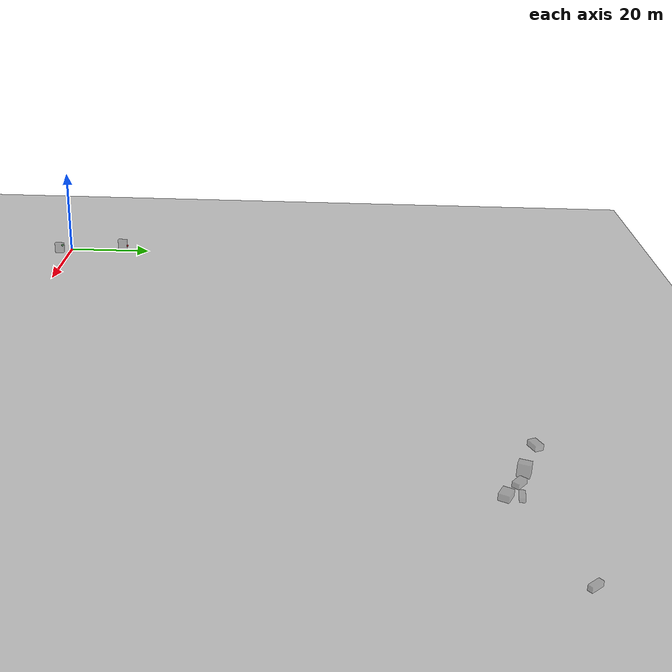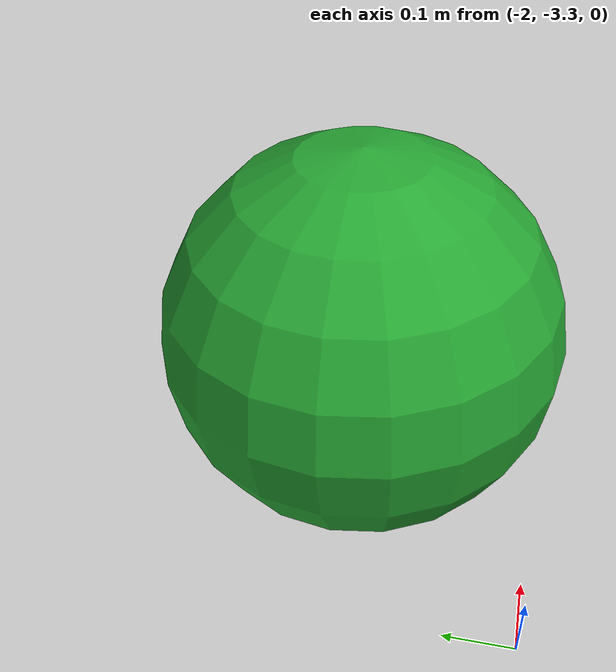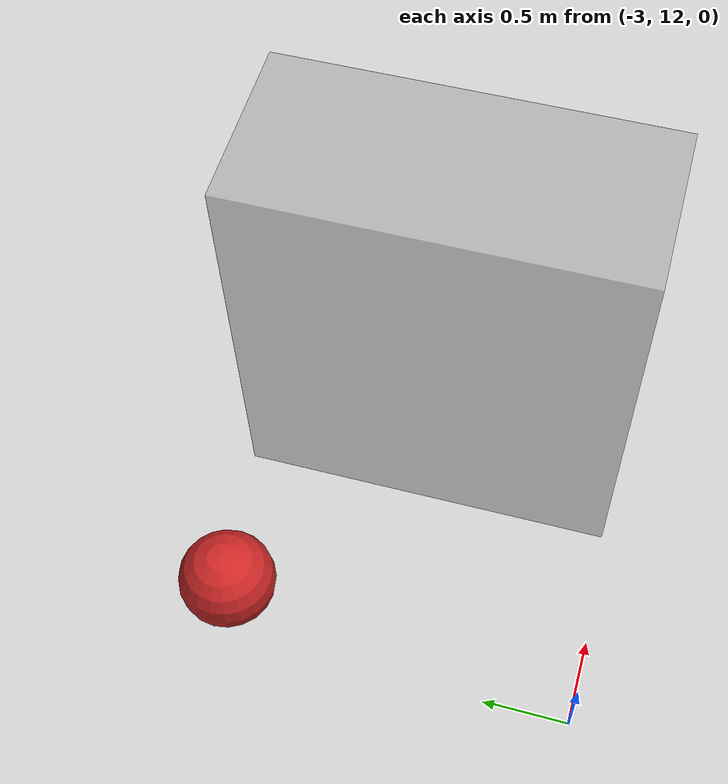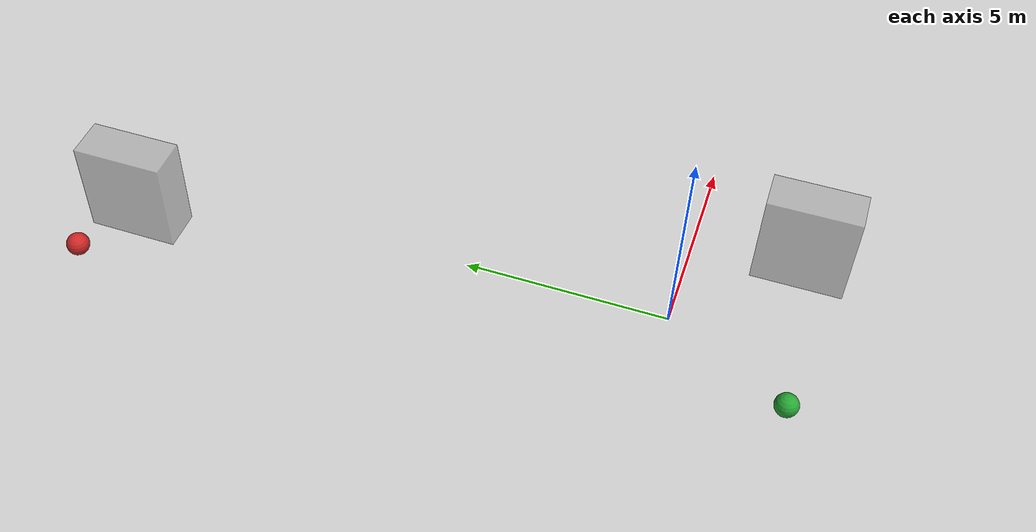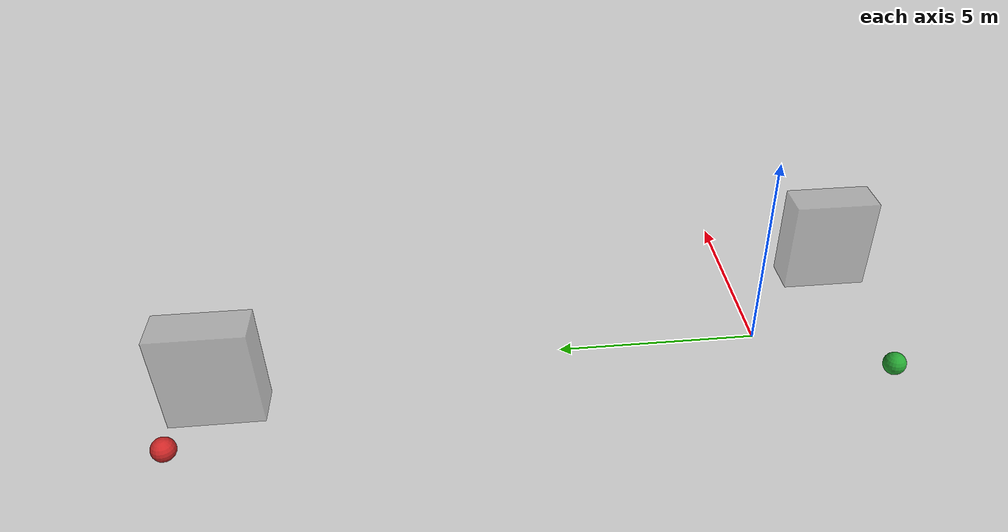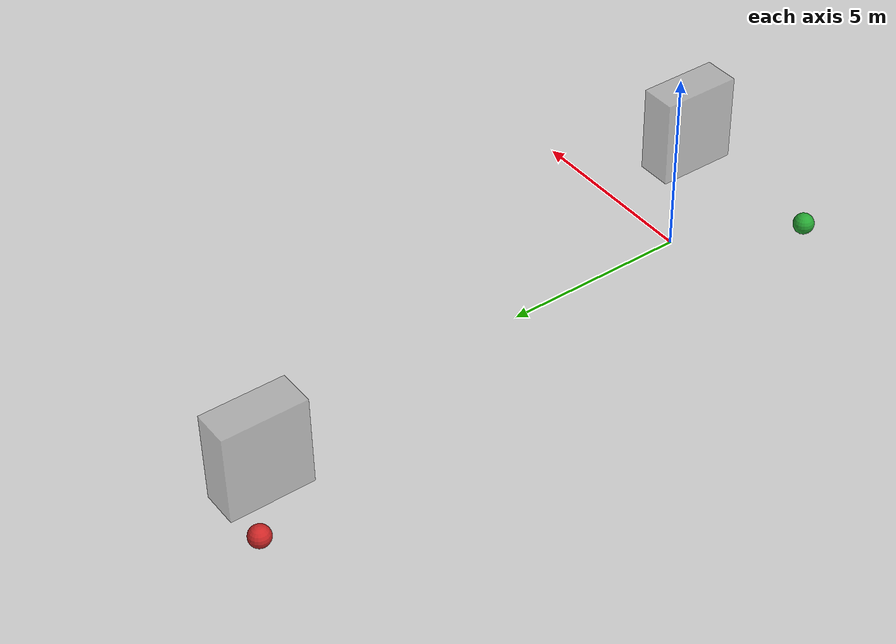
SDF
<sdf version="1.7">
 <world name="default">
  <light name="sun" type="directional">
   <pose>0 0 10 0 -0 0</pose>
   <diffuse>0.8 0.8 0.8 1</diffuse>
   <specular>0.2 0.2 0.2 1</specular>
   <attenuation>
    <range>1000</range>
    <constant>0.9</constant>
    <linear>0.01</linear>
    <quadratic>0.001</quadratic>
   </attenuation>
   <direction>-0.5 0.1 -0.9</direction>
   <spot><inner_angle>0</inner_angle><outer_angle>0</outer_angle><falloff>0</falloff></spot>
  </light>
  <model name="ground_plane">
   <static>1</static>
   <link name="link">
    <collision name="collision">
     <geometry><plane><normal>0 0 1</normal><size>100 100</size></plane></geometry>
     <surface>
      <contact><collide_bitmask>65535</collide_bitmask></contact>
      <friction><ode><mu>100</mu><mu2>50</mu2></ode></friction>
     </surface>
    </collision>
    <visual name="visual">
     <cast_shadows>0</cast_shadows>
     <geometry><plane><normal>0 0 1</normal><size>100 100</size></plane></geometry>
     <material>
      <script><uri>file://media/materials/scripts/gazebo.material</uri><name>Gazebo/Grey</name></script>
     </material>
    </visual>
   </link>
  </model>
  <gravity>0 0 -9.8</gravity>
  <magnetic_field>6e-06 2.3e-05 -4.2e-05</magnetic_field>
  <atmosphere type="adiabatic"/>
  <physics type="ode">
   <max_step_size>0.001</max_step_size>
   <real_time_factor>1</real_time_factor>
   <real_time_update_rate>1000</real_time_update_rate>
  </physics>
  <scene><ambient>0.4 0.4 0.4 1</ambient><background>0.7 0.7 0.7 1</background><shadows>1</shadows></scene>
  <spherical_coordinates>
   <surface_model>EARTH_WGS84</surface_model>
   <latitude_deg>0</latitude_deg>
   <longitude_deg>0</longitude_deg>
   <elevation>0</elevation>
   <heading_deg>0</heading_deg>
  </spherical_coordinates>
  <model name="unit_box_0">
   <link name="link">
    <inertial>
     <mass>5.52071</mass>
     <inertia><ixx>5.113</ixx><ixy>0</ixy><ixz>0</ixz><iyy>3.3079</iyy><iyz>0</iyz><izz>2.72521</izz></inertia>
    </inertial>
    <visual name="visual">
     <geometry><box><size>1 2.21892 2.48801</size></box></geometry>
     <material>
      <script><name>Gazebo/Grey</name><uri>file://media/materials/scripts/gazebo.material</uri></script>
      <shader type="pixel"><normal_map>__default__</normal_map></shader>
      <ambient>0.3 0.3 0.3 1</ambient>
      <diffuse>0.7 0.7 0.7 1</diffuse>
      <specular>0.01 0.01 0.01 1</specular>
      <emissive>0 0 0 1</emissive>
     </material>
     <transparency>0.5</transparency>
    </visual>
    <collision name="collision">
     <geometry><box><size>1 2.21892 2.48801</size></box></geometry>
     <surface>
      <friction>
       <ode><mu>1</mu><mu2>1</mu2><fdir1>0 0 0</fdir1><slip1>0</slip1><slip2>0</slip2></ode>
       <torsional>
        <coefficient>1</coefficient>
        <patch_radius>0</patch_radius>
        <surface_radius>0</surface_radius>
        <use_patch_radius>1</use_patch_radius>
        <ode><slip>0</slip></ode>
       </torsional>
      </friction>
      <bounce><restitution_coefficient>0</restitution_coefficient><threshold>1e+06</threshold></bounce>
      <contact>
       <collide_without_contact>0</collide_without_contact>
       <collide_without_contact_bitmask>1</collide_without_contact_bitmask>
       <collide_bitmask>1</collide_bitmask>
       <ode>
        <soft_cfm>0</soft_cfm>
        <soft_erp>0.2</soft_erp>
        <kp>1e+13</kp>
        <kd>1</kd>
        <max_vel>0.01</max_vel>
        <min_depth>0</min_depth>
       </ode>
       <bullet>
        <split_impulse>1</split_impulse>
        <split_impulse_penetration_threshold>-0.01</split_impulse_penetration_threshold>
        <soft_cfm>0</soft_cfm>
        <soft_erp>0.2</soft_erp>
        <kp>1e+13</kp>
        <kd>1</kd>
       </bullet>
      </contact>
     </surface>
    </collision>
   </link>
   <static>0</static>
   <pose>-1.2973 13.1503 1.24401 0 1e-06 0</pose>
  </model>
  <model name="unit_box_1">
   <link name="link">
    <inertial>
     <mass>5.52071</mass>
     <inertia><ixx>5.113</ixx><ixy>0</ixy><ixz>0</ixz><iyy>3.3079</iyy><iyz>0</iyz><izz>2.72521</izz></inertia>
    </inertial>
    <visual name="visual">
     <geometry><box><size>1.63627 1.10436 2.48801</size></box></geometry>
     <material>
      <script><name>Gazebo/Grey</name><uri>file://media/materials/scripts/gazebo.material</uri></script>
      <shader type="pixel"><normal_map>__default__</normal_map></shader>
      <ambient>0.3 0.3 0.3 1</ambient>
      <diffuse>0.7 0.7 0.7 1</diffuse>
      <specular>0.01 0.01 0.01 1</specular>
      <emissive>0 0 0 1</emissive>
     </material>
     <transparency>0.5</transparency>
    </visual>
    <collision name="collision">
     <geometry><box><size>1.63627 1.10436 2.48801</size></box></geometry>
     <surface>
      <friction>
       <ode><mu>1</mu><mu2>1</mu2><fdir1>0 0 0</fdir1><slip1>0</slip1><slip2>0</slip2></ode>
       <torsional>
        <coefficient>1</coefficient>
        <patch_radius>0</patch_radius>
        <surface_radius>0</surface_radius>
        <use_patch_radius>1</use_patch_radius>
        <ode><slip>0</slip></ode>
       </torsional>
      </friction>
      <bounce><restitution_coefficient>0</restitution_coefficient><threshold>1e+06</threshold></bounce>
      <contact>
       <collide_without_contact>0</collide_without_contact>
       <collide_without_contact_bitmask>1</collide_without_contact_bitmask>
       <collide_bitmask>1</collide_bitmask>
       <ode>
        <soft_cfm>0</soft_cfm>
        <soft_erp>0.2</soft_erp>
        <kp>1e+13</kp>
        <kd>1</kd>
        <max_vel>0.01</max_vel>
        <min_depth>0</min_depth>
       </ode>
       <bullet>
        <split_impulse>1</split_impulse>
        <split_impulse_penetration_threshold>-0.01</split_impulse_penetration_threshold>
        <soft_cfm>0</soft_cfm>
        <soft_erp>0.2</soft_erp>
        <kp>1e+13</kp>
        <kd>1</kd>
       </bullet>
      </contact>
     </surface>
    </collision>
   </link>
   <static>0</static>
   <pose>89.2709 103.628 0.55218 -1.5708 0 2.01413</pose>
  </model>
  <model name="unit_box_2">
   <link name="link">
    <inertial>
     <mass>5.52071</mass>
     <inertia><ixx>5.113</ixx><ixy>0</ixy><ixz>0</ixz><iyy>3.3079</iyy><iyz>0</iyz><izz>2.72521</izz></inertia>
    </inertial>
    <visual name="visual">
     <geometry><box><size>1 0.904902 2.48801</size></box></geometry>
     <material>
      <script><name>Gazebo/Grey</name><uri>file://media/materials/scripts/gazebo.material</uri></script>
      <shader type="pixel"><normal_map>__default__</normal_map></shader>
      <ambient>0.3 0.3 0.3 1</ambient>
      <diffuse>0.7 0.7 0.7 1</diffuse>
      <specular>0.01 0.01 0.01 1</specular>
      <emissive>0 0 0 1</emissive>
     </material>
     <transparency>0.5</transparency>
    </visual>
    <collision name="collision">
     <geometry><box><size>1 0.904902 2.48801</size></box></geometry>
     <surface>
      <friction>
       <ode><mu>1</mu><mu2>1</mu2><fdir1>0 0 0</fdir1><slip1>0</slip1><slip2>0</slip2></ode>
       <torsional>
        <coefficient>1</coefficient>
        <patch_radius>0</patch_radius>
        <surface_radius>0</surface_radius>
        <use_patch_radius>1</use_patch_radius>
        <ode><slip>0</slip></ode>
       </torsional>
      </friction>
      <bounce><restitution_coefficient>0</restitution_coefficient><threshold>1e+06</threshold></bounce>
      <contact>
       <collide_without_contact>0</collide_without_contact>
       <collide_without_contact_bitmask>1</collide_without_contact_bitmask>
       <collide_bitmask>1</collide_bitmask>
       <ode>
        <soft_cfm>0</soft_cfm>
        <soft_erp>0.2</soft_erp>
        <kp>1e+13</kp>
        <kd>1</kd>
        <max_vel>0.01</max_vel>
        <min_depth>0</min_depth>
       </ode>
       <bullet>
        <split_impulse>1</split_impulse>
        <split_impulse_penetration_threshold>-0.01</split_impulse_penetration_threshold>
        <soft_cfm>0</soft_cfm>
        <soft_erp>0.2</soft_erp>
        <kp>1e+13</kp>
        <kd>1</kd>
       </bullet>
      </contact>
     </surface>
    </collision>
   </link>
   <static>0</static>
   <pose>126.186 105.608 0.499998 -1.5708 1.57079 0.723319</pose>
  </model>
  <model name="unit_box_3">
   <link name="link">
    <inertial>
     <mass>5.52071</mass>
     <inertia><ixx>5.113</ixx><ixy>0</ixy><ixz>0</ixz><iyy>3.3079</iyy><iyz>0</iyz><izz>2.72521</izz></inertia>
    </inertial>
    <visual name="visual">
     <geometry><box><size>1.72138 2.21892 2.48801</size></box></geometry>
     <material>
      <script><name>Gazebo/Grey</name><uri>file://media/materials/scripts/gazebo.material</uri></script>
      <shader type="pixel"><normal_map>__default__</normal_map></shader>
      <ambient>0.3 0.3 0.3 1</ambient>
      <diffuse>0.7 0.7 0.7 1</diffuse>
      <specular>0.01 0.01 0.01 1</specular>
      <emissive>0 0 0 1</emissive>
     </material>
     <transparency>0.5</transparency>
    </visual>
    <collision name="collision">
     <geometry><box><size>1.72138 2.21892 2.48801</size></box></geometry>
     <surface>
      <friction>
       <ode><mu>1</mu><mu2>1</mu2><fdir1>0 0 0</fdir1><slip1>0</slip1><slip2>0</slip2></ode>
       <torsional>
        <coefficient>1</coefficient>
        <patch_radius>0</patch_radius>
        <surface_radius>0</surface_radius>
        <use_patch_radius>1</use_patch_radius>
        <ode><slip>0</slip></ode>
       </torsional>
      </friction>
      <bounce><restitution_coefficient>0</restitution_coefficient><threshold>1e+06</threshold></bounce>
      <contact>
       <collide_without_contact>0</collide_without_contact>
       <collide_without_contact_bitmask>1</collide_without_contact_bitmask>
       <collide_bitmask>1</collide_bitmask>
       <ode>
        <soft_cfm>0</soft_cfm>
        <soft_erp>0.2</soft_erp>
        <kp>1e+13</kp>
        <kd>1</kd>
        <max_vel>0.01</max_vel>
        <min_depth>0</min_depth>
       </ode>
       <bullet>
        <split_impulse>1</split_impulse>
        <split_impulse_penetration_threshold>-0.01</split_impulse_penetration_threshold>
        <soft_cfm>0</soft_cfm>
        <soft_erp>0.2</soft_erp>
        <kp>1e+13</kp>
        <kd>1</kd>
       </bullet>
      </contact>
     </surface>
    </collision>
   </link>
   <static>0</static>
   <pose>98.1704 100.257 1.244 0 4e-06 -0.333363</pose>
  </model>
  <model name="unit_box_4">
   <link name="link">
    <inertial>
     <mass>5.52071</mass>
     <inertia><ixx>5.113</ixx><ixy>0</ixy><ixz>0</ixz><iyy>3.3079</iyy><iyz>0</iyz><izz>2.72521</izz></inertia>
    </inertial>
    <visual name="visual">
     <geometry><box><size>1.28805 1.91556 2.48801</size></box></geometry>
     <material>
      <script><name>Gazebo/Grey</name><uri>file://media/materials/scripts/gazebo.material</uri></script>
      <shader type="pixel"><normal_map>__default__</normal_map></shader>
      <ambient>0.3 0.3 0.3 1</ambient>
      <diffuse>0.7 0.7 0.7 1</diffuse>
      <specular>0.01 0.01 0.01 1</specular>
      <emissive>0 0 0 1</emissive>
     </material>
     <transparency>0.5</transparency>
    </visual>
    <collision name="collision">
     <geometry><box><size>1.28805 1.91556 2.48801</size></box></geometry>
     <surface>
      <friction>
       <ode><mu>1</mu><mu2>1</mu2><fdir1>0 0 0</fdir1><slip1>0</slip1><slip2>0</slip2></ode>
       <torsional>
        <coefficient>1</coefficient>
        <patch_radius>0</patch_radius>
        <surface_radius>0</surface_radius>
        <use_patch_radius>1</use_patch_radius>
        <ode><slip>0</slip></ode>
       </torsional>
      </friction>
      <bounce><restitution_coefficient>0</restitution_coefficient><threshold>1e+06</threshold></bounce>
      <contact>
       <collide_without_contact>0</collide_without_contact>
       <collide_without_contact_bitmask>1</collide_without_contact_bitmask>
       <collide_bitmask>1</collide_bitmask>
       <ode>
        <soft_cfm>0</soft_cfm>
        <soft_erp>0.2</soft_erp>
        <kp>1e+13</kp>
        <kd>1</kd>
        <max_vel>0.01</max_vel>
        <min_depth>0</min_depth>
       </ode>
       <bullet>
        <split_impulse>1</split_impulse>
        <split_impulse_penetration_threshold>-0.01</split_impulse_penetration_threshold>
        <soft_cfm>0</soft_cfm>
        <soft_erp>0.2</soft_erp>
        <kp>1e+13</kp>
        <kd>1</kd>
       </bullet>
      </contact>
     </surface>
    </collision>
   </link>
   <static>0</static>
   <pose>105.063 96.358 0.644025 0.465873 1.57079 3.14159</pose>
  </model>
  <model name="unit_box_5">
   <link name="link">
    <inertial>
     <mass>5.52071</mass>
     <inertia><ixx>5.113</ixx><ixy>0</ixy><ixz>0</ixz><iyy>3.3079</iyy><iyz>0</iyz><izz>2.72521</izz></inertia>
    </inertial>
    <visual name="visual">
     <geometry><box><size>1 1.38492 2.48801</size></box></geometry>
     <material>
      <script><name>Gazebo/Grey</name><uri>file://media/materials/scripts/gazebo.material</uri></script>
      <shader type="pixel"><normal_map>__default__</normal_map></shader>
      <ambient>0.3 0.3 0.3 1</ambient>
      <diffuse>0.7 0.7 0.7 1</diffuse>
      <specular>0.01 0.01 0.01 1</specular>
      <emissive>0 0 0 1</emissive>
     </material>
     <transparency>0.5</transparency>
    </visual>
    <collision name="collision">
     <geometry><box><size>1 1.38492 2.48801</size></box></geometry>
     <surface>
      <friction>
       <ode><mu>1</mu><mu2>1</mu2><fdir1>0 0 0</fdir1><slip1>0</slip1><slip2>0</slip2></ode>
       <torsional>
        <coefficient>1</coefficient>
        <patch_radius>0</patch_radius>
        <surface_radius>0</surface_radius>
        <use_patch_radius>1</use_patch_radius>
        <ode><slip>0</slip></ode>
       </torsional>
      </friction>
      <bounce><restitution_coefficient>0</restitution_coefficient><threshold>1e+06</threshold></bounce>
      <contact>
       <collide_without_contact>0</collide_without_contact>
       <collide_without_contact_bitmask>1</collide_without_contact_bitmask>
       <collide_bitmask>1</collide_bitmask>
       <ode>
        <soft_cfm>0</soft_cfm>
        <soft_erp>0.2</soft_erp>
        <kp>1e+13</kp>
        <kd>1</kd>
        <max_vel>0.01</max_vel>
        <min_depth>0</min_depth>
       </ode>
       <bullet>
        <split_impulse>1</split_impulse>
        <split_impulse_penetration_threshold>-0.01</split_impulse_penetration_threshold>
        <soft_cfm>0</soft_cfm>
        <soft_erp>0.2</soft_erp>
        <kp>1e+13</kp>
        <kd>1</kd>
       </bullet>
      </contact>
     </surface>
    </collision>
   </link>
   <static>0</static>
   <pose>101.204 99.0589 0.5 -2.4616 1.57079 3.14159</pose>
  </model>
  <model name="unit_box_6">
   <link name="link">
    <inertial>
     <mass>5.52071</mass>
     <inertia><ixx>5.113</ixx><ixy>0</ixy><ixz>0</ixz><iyy>3.3079</iyy><iyz>0</iyz><izz>2.72521</izz></inertia>
    </inertial>
    <visual name="visual">
     <geometry><box><size>1 0.786751 2.48801</size></box></geometry>
     <material>
      <script><name>Gazebo/Grey</name><uri>file://media/materials/scripts/gazebo.material</uri></script>
      <shader type="pixel"><normal_map>__default__</normal_map></shader>
      <ambient>0.3 0.3 0.3 1</ambient>
      <diffuse>0.7 0.7 0.7 1</diffuse>
      <specular>0.01 0.01 0.01 1</specular>
      <emissive>0 0 0 1</emissive>
     </material>
     <transparency>0.5</transparency>
    </visual>
    <collision name="collision">
     <geometry><box><size>1 0.786751 2.48801</size></box></geometry>
     <surface>
      <friction>
       <ode><mu>1</mu><mu2>1</mu2><fdir1>0 0 0</fdir1><slip1>0</slip1><slip2>0</slip2></ode>
       <torsional>
        <coefficient>1</coefficient>
        <patch_radius>0</patch_radius>
        <surface_radius>0</surface_radius>
        <use_patch_radius>1</use_patch_radius>
        <ode><slip>0</slip></ode>
       </torsional>
      </friction>
      <bounce><restitution_coefficient>0</restitution_coefficient><threshold>1e+06</threshold></bounce>
      <contact>
       <collide_without_contact>0</collide_without_contact>
       <collide_without_contact_bitmask>1</collide_without_contact_bitmask>
       <collide_bitmask>1</collide_bitmask>
       <ode>
        <soft_cfm>0</soft_cfm>
        <soft_erp>0.2</soft_erp>
        <kp>1e+13</kp>
        <kd>1</kd>
        <max_vel>0.01</max_vel>
        <min_depth>0</min_depth>
       </ode>
       <bullet>
        <split_impulse>1</split_impulse>
        <split_impulse_penetration_threshold>-0.01</split_impulse_penetration_threshold>
        <soft_cfm>0</soft_cfm>
        <soft_erp>0.2</soft_erp>
        <kp>1e+13</kp>
        <kd>1</kd>
       </bullet>
      </contact>
     </surface>
    </collision>
   </link>
   <static>0</static>
   <pose>104.891 98.9346 0.393372 1.5708 -7e-06 -1.67914</pose>
  </model>
  <model name="cricket_ball">
   <link name="link">
    <pose>0.012079 0.002794 0.371053 0 -0 0</pose>
    <inertial>
     <mass>62.1521</mass>
     <inertia><ixx>1.97172</ixx><ixy>0</ixy><ixz>0</ixz><iyy>1.97172</iyy><iyz>0</iyz><izz>1.97172</izz></inertia>
    </inertial>
    <velocity_decay><linear>0</linear><angular>0.005</angular></velocity_decay>
    <visual name="visual">
     <geometry><sphere><radius>0.281621</radius></sphere></geometry>
     <material>
      <script><uri>file://media/materials/scripts/gazebo.material</uri><name>Gazebo/Red</name></script>
      <shader type="pixel"/>
     </material>
    </visual>
    <collision name="collision">
     <geometry><sphere><radius>0.281621</radius></sphere></geometry>
     <surface>
      <friction>
       <ode><mu>1</mu><mu2>1</mu2><fdir1>0 0 0</fdir1><slip1>0</slip1><slip2>0</slip2></ode>
       <torsional>
        <coefficient>1</coefficient>
        <patch_radius>0</patch_radius>
        <surface_radius>0.01</surface_radius>
        <use_patch_radius>0</use_patch_radius>
        <ode><slip>0</slip></ode>
       </torsional>
      </friction>
      <bounce><restitution_coefficient>0</restitution_coefficient><threshold>1e+06</threshold></bounce>
      <contact>
       <collide_without_contact>0</collide_without_contact>
       <collide_without_contact_bitmask>1</collide_without_contact_bitmask>
       <collide_bitmask>1</collide_bitmask>
       <ode>
        <soft_cfm>0</soft_cfm>
        <soft_erp>0.2</soft_erp>
        <kp>100000</kp>
        <kd>100</kd>
        <max_vel>100</max_vel>
        <min_depth>0.001</min_depth>
       </ode>
       <bullet>
        <split_impulse>1</split_impulse>
        <split_impulse_penetration_threshold>-0.01</split_impulse_penetration_threshold>
        <soft_cfm>0</soft_cfm>
        <soft_erp>0.2</soft_erp>
        <kp>100000</kp>
        <kd>100</kd>
       </bullet>
      </contact>
     </surface>
    </collision>
   </link>
   <static>0</static>
   <pose>-2.76753 14.0758 -0.096462 0 -0 0</pose>
  </model>
  <model name="unit_box_7">
   <link name="link">
    <inertial>
     <mass>5.52071</mass>
     <inertia><ixx>5.113</ixx><ixy>0</ixy><ixz>0</ixz><iyy>3.3079</iyy><iyz>0</iyz><izz>2.72521</izz></inertia>
    </inertial>
    <visual name="visual">
     <geometry><box><size>1 2.21892 2.48801</size></box></geometry>
     <material>
      <script><name>Gazebo/Grey</name><uri>file://media/materials/scripts/gazebo.material</uri></script>
      <shader type="pixel"><normal_map>__default__</normal_map></shader>
      <ambient>0.3 0.3 0.3 1</ambient>
      <diffuse>0.7 0.7 0.7 1</diffuse>
      <specular>0.01 0.01 0.01 1</specular>
      <emissive>0 0 0 1</emissive>
     </material>
     <transparency>0.5</transparency>
    </visual>
    <collision name="collision">
     <geometry><box><size>1 2.21892 2.48801</size></box></geometry>
     <surface>
      <friction>
       <ode><mu>1</mu><mu2>1</mu2><fdir1>0 0 0</fdir1><slip1>0</slip1><slip2>0</slip2></ode>
       <torsional>
        <coefficient>1</coefficient>
        <patch_radius>0</patch_radius>
        <surface_radius>0</surface_radius>
        <use_patch_radius>1</use_patch_radius>
        <ode><slip>0</slip></ode>
       </torsional>
      </friction>
      <bounce><restitution_coefficient>0</restitution_coefficient><threshold>1e+06</threshold></bounce>
      <contact>
       <collide_without_contact>0</collide_without_contact>
       <collide_without_contact_bitmask>1</collide_without_contact_bitmask>
       <collide_bitmask>1</collide_bitmask>
       <ode>
        <soft_cfm>0</soft_cfm>
        <soft_erp>0.2</soft_erp>
        <kp>1e+13</kp>
        <kd>1</kd>
        <max_vel>0.01</max_vel>
        <min_depth>0</min_depth>
       </ode>
       <bullet>
        <split_impulse>1</split_impulse>
        <split_impulse_penetration_threshold>-0.01</split_impulse_penetration_threshold>
        <soft_cfm>0</soft_cfm>
        <soft_erp>0.2</soft_erp>
        <kp>1e+13</kp>
        <kd>1</kd>
       </bullet>
      </contact>
     </surface>
    </collision>
   </link>
   <static>0</static>
   <pose>2.49737 -2.61593 1.244 -1e-06 1e-06 2e-06</pose>
  </model>
  <model name="cricket_ball_green">
   <link name="link">
    <pose>0.012079 0.002794 0.371053 0 -0 0</pose>
    <inertial>
     <mass>62.1521</mass>
     <inertia><ixx>1.97172</ixx><ixy>0</ixy><ixz>0</ixz><iyy>1.97172</iyy><iyz>0</iyz><izz>1.97172</izz></inertia>
    </inertial>
    <velocity_decay><linear>0</linear><angular>0.005</angular></velocity_decay>
    <visual name="visual">
     <geometry><sphere><radius>0.281621</radius></sphere></geometry>
     <material>
      <script><uri>file://media/materials/scripts/gazebo.material</uri><name>Gazebo/Green</name></script>
      <shader type="pixel"><normal_map>__default__</normal_map></shader>
      <ambient>0 1 0 1</ambient>
      <diffuse>0 1 0 1</diffuse>
      <specular>0.1 0.1 0.1 1</specular>
      <emissive>0 0 0 1</emissive>
     </material>
    </visual>
    <collision name="collision">
     <geometry><sphere><radius>0.281621</radius></sphere></geometry>
     <surface>
      <friction>
       <ode><mu>1</mu><mu2>1</mu2><fdir1>0 0 0</fdir1><slip1>0</slip1><slip2>0</slip2></ode>
       <torsional>
        <coefficient>1</coefficient>
        <patch_radius>0</patch_radius>
        <surface_radius>0.01</surface_radius>
        <use_patch_radius>0</use_patch_radius>
        <ode><slip>0</slip></ode>
       </torsional>
      </friction>
      <bounce><restitution_coefficient>0</restitution_coefficient><threshold>1e+06</threshold></bounce>
      <contact>
       <collide_without_contact>0</collide_without_contact>
       <collide_without_contact_bitmask>1</collide_without_contact_bitmask>
       <collide_bitmask>1</collide_bitmask>
       <ode>
        <soft_cfm>0</soft_cfm>
        <soft_erp>0.2</soft_erp>
        <kp>100000</kp>
        <kd>100</kd>
        <max_vel>100</max_vel>
        <min_depth>0.001</min_depth>
       </ode>
       <bullet>
        <split_impulse>1</split_impulse>
        <split_impulse_penetration_threshold>-0.01</split_impulse_penetration_threshold>
        <soft_cfm>0</soft_cfm>
        <soft_erp>0.2</soft_erp>
        <kp>100000</kp>
        <kd>100</kd>
       </bullet>
      </contact>
     </surface>
    </collision>
   </link>
   <static>0</static>
   <pose>-1.72581 -3.04013 -0.096708 0 -0 0</pose>
  </model>
 </world>
</sdf>
